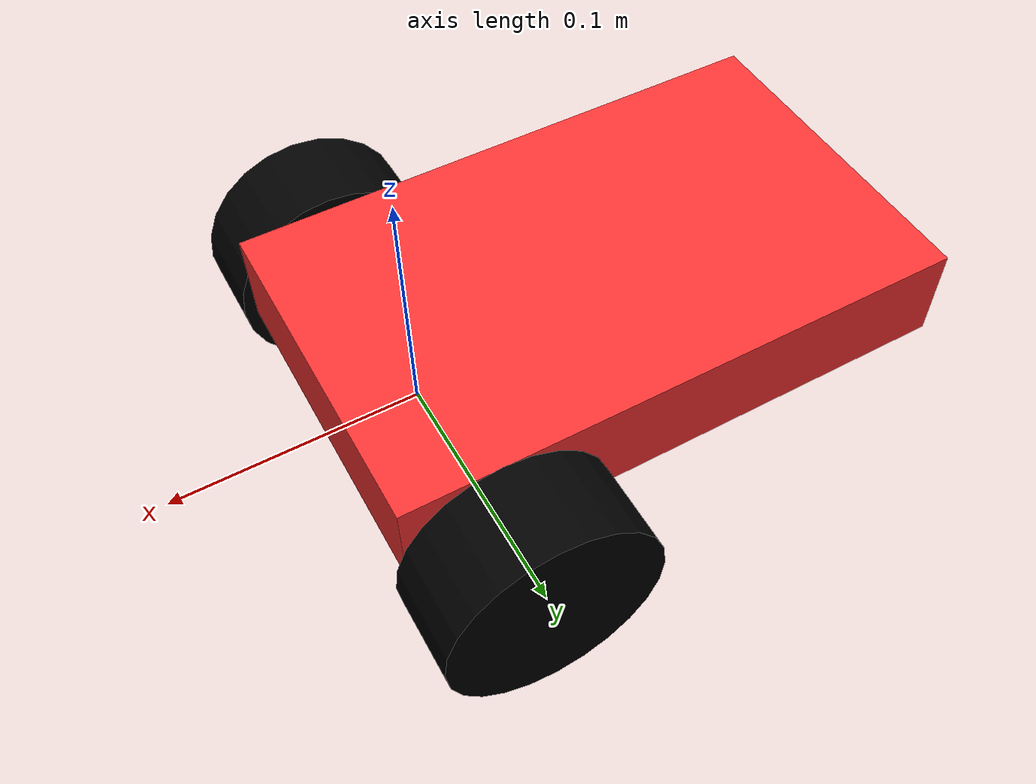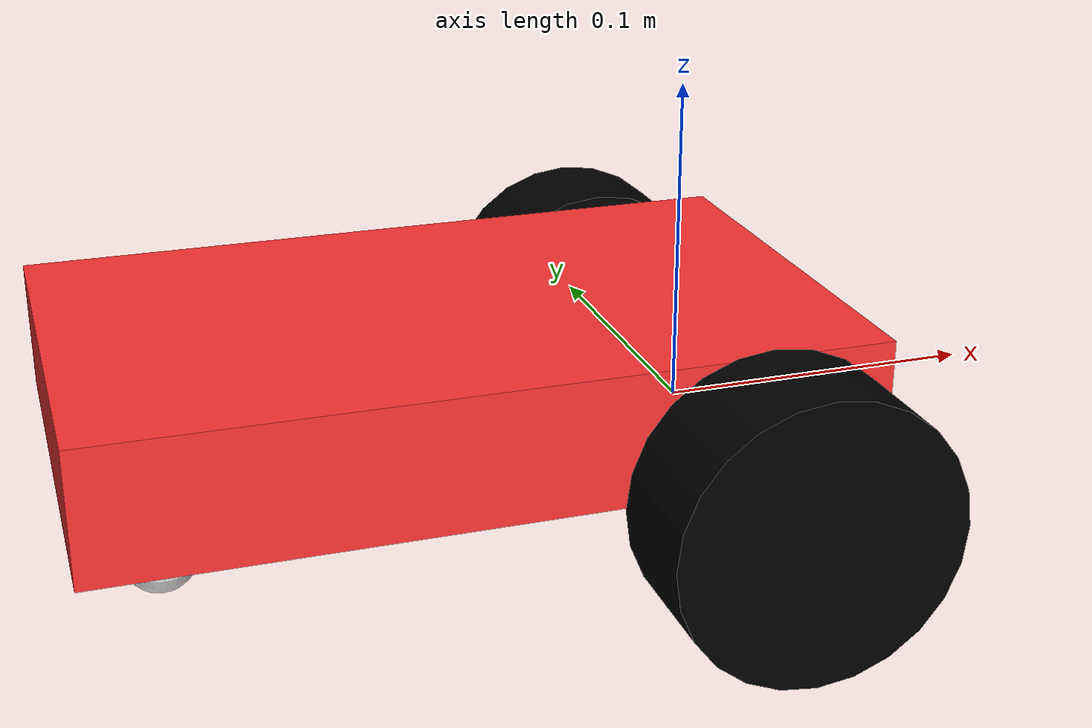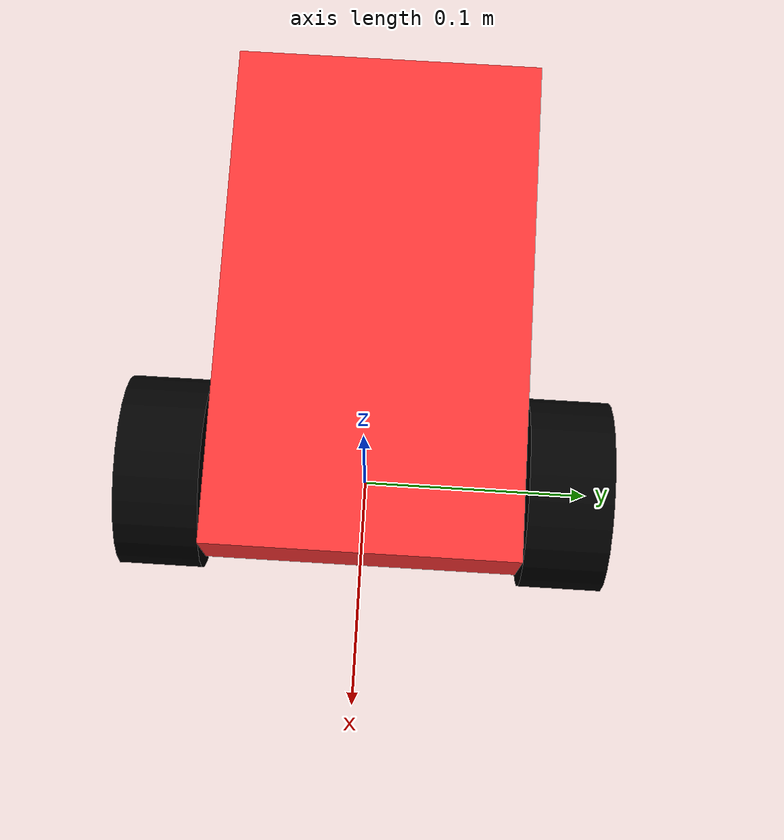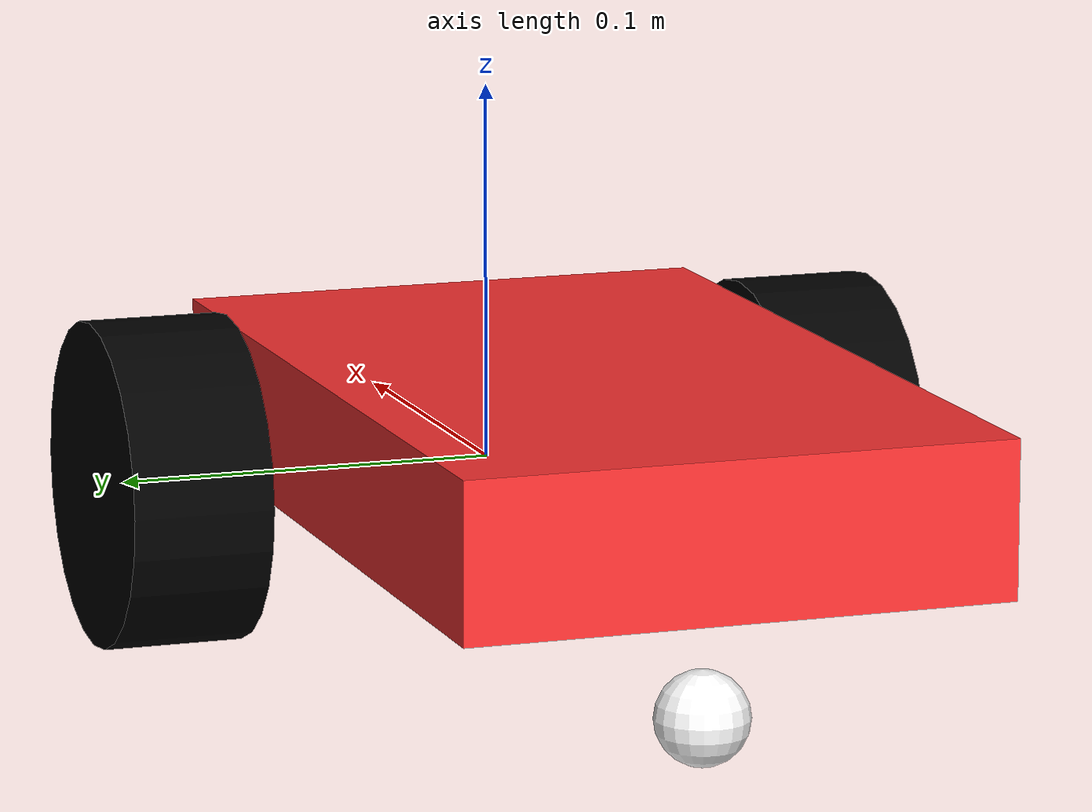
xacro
<?xml version="1.0"?>
<robot xmlns:xacro="http://www.ros.org/wiki/xacro"  name="robot">

    <xacro:include filename="robot_core.xacro"/>
    <xacro:include filename="robot_materials.xacro"/>
    <xacro:include filename="inertial_macros.xacro"/>
    <xacro:include filename="gazebo_control.xacro"/>

</robot>

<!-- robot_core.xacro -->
<robot xmlns:xacro="http://www.ros.org/wiki/xacro" >
<xacro:include filename="inertial_macros.xacro" />

    <!--BASE-->
    <link name="base_link">
    </link>

    <!--CHASSIS-->
    <joint name="chassis_joint" type="fixed">
        <parent link="base_link"/>
        <child link="chassis_link"/>
        <origin xyz="-0.192 0.0 0.0" rpy="0.0 0.0 0.0"/>
    </joint>

    <link name="chassis_link">
        <visual>
            <geometry>
                <box size="0.23 0.14 0.04"/>
            </geometry>
            <material name="red"/>
        <origin xyz="0.115 0.0 0.02" rpy="0.0 0.0 0.0"/>
        </visual>
        <collision>
            <geometry>
                <box size="0.23 0.14 0.04"/>
            </geometry>
        </collision>
        <xacro:inertial_box mass="0.98" x="0.132" y="0.0" z="0.004">
            <origin xyz="0.115 0.0 0.02" rpy="0.0 0.0 0.0"/>
        </xacro:inertial_box>
    </link>
    <gazebo reference="chassis_link">
        <material>Gazebo/Red</material>
    </gazebo>

    <!-- LEFT WHEEL -->

    <joint name="left_wheel_joint" type="continuous">
        <parent link="base_link"/>
        <child link="left_wheel_link"/>
        <origin xyz="0.0 0.090 0.0" rpy="-${pi/2} 0.0 0.0"/>
        <axis xyz="0.0 0.0 1.0"/>
    </joint>

    <link name="left_wheel_link">
        <visual>
            <geometry>
                <cylinder radius="0.043" length="0.037"/>
            </geometry>
            <material name="black">
            </material>
        </visual>
        <collision>
            <geometry>
                <cylinder radius="0.043" length="0.037"/>
            </geometry>
        </collision>
        <xacro:inertial_cylinder mass="0.058" length="0.037" radius="0.043">
            <origin xyz="0.0 0.0 0.0" rpy="0.0 0.0 0.0"/>
        </xacro:inertial_cylinder>
    </link>
    <gazebo reference="left_wheel_link">
        <material>Gazebo/Black</material>
    </gazebo>

        <!-- RIGHT WHEEL  -->
    <joint name="right_wheel_joint" type="continuous">
        <parent link="base_link"/>
        <child link="right_wheel_link"/>
        <origin xyz="0.0 -0.090 0.0" rpy="${pi/2} 0.0 0.0"/>
        <axis xyz="0.0 0.0 -1.0"/>
    </joint>

    <link name="right_wheel_link">
        <visual>
            <geometry>
                <cylinder radius="0.043" length="0.037"/>
            </geometry>
            <material name="black">
            </material>
        </visual>
        <collision>
            <geometry>
                <cylinder radius="0.043" length="0.037"/>
            </geometry>
        </collision>
        <xacro:inertial_cylinder mass="0.058" length="0.037" radius="0.043">
            <origin xyz="0.0 0.0 0.0" rpy="0.0 0.0 0.0"/>
        </xacro:inertial_cylinder>
    </link>
    <gazebo reference="right_wheel_link">
        <material>Gazebo/Black</material>
    </gazebo>

        <!-- CASTER WHEEL -->
    <joint name="caster_wheel_joint" type="fixed">
        <parent link="chassis_link"/>
        <child link="caster_wheel_link"/>
        <origin xyz="0.028 0.0 -0.030"/>
    </joint>

    <link name="caster_wheel_link">
        <visual>
            <geometry>
                    <sphere radius="0.012"/>
            </geometry>
            <material name="white"/>
        </visual>
        <collision>
            <geometry>
                <sphere radius="0.012"/>
            </geometry>
        </collision>
        <xacro:inertial_sphere mass="0.022" radius="0.012">
            <origin xyz="0.0 0.0 0.0" rpy="0.0 0.0 0.0"/>
        </xacro:inertial_sphere>
    </link>
    <gazebo reference="caster_wheel_link">
        <material>Gazebo/White</material>
        <mu1 value="0.001"/>
        <mu2 value="0.001"/>
    </gazebo>

</robot>

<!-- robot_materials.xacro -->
<robot xmlns:xacro="http://www.ros.org/wiki/xacro" >

    <material name="white">
        <color rgba="1.0 1.0 1.0 1.0"/>
    </material>

    <material name="orange">
        <color rgba="1.0 0.3 0.1 1.0"/>
    </material>

    <material name="blue">
        <color rgba="0.2 0.2 1.0 1.0"/>
    </material>

    <material name="black">
        <color rgba="0.0 0.0 0.0 1.0"/>
    </material>

    <material name="red">
        <color rgba="1.0 0.2 0.2 1.0"/>
    </material>

</robot>
